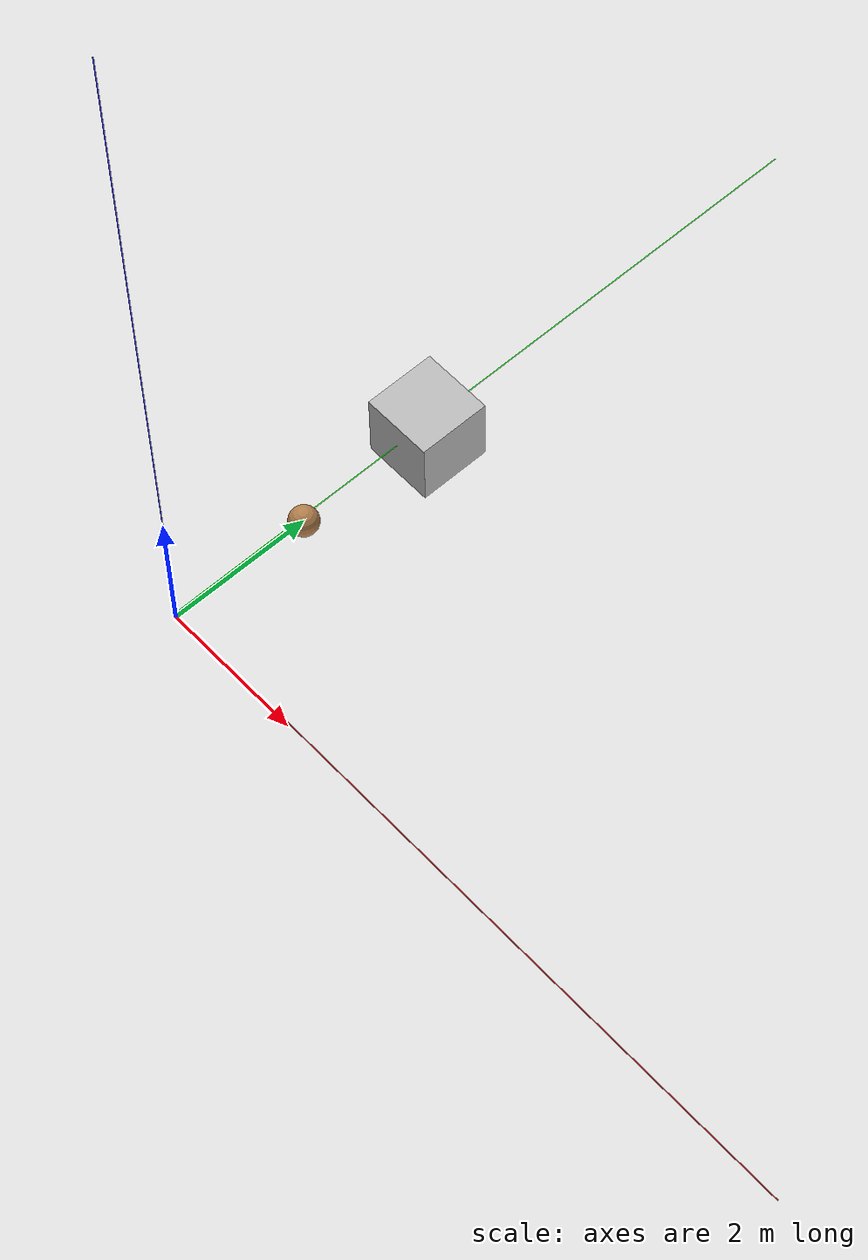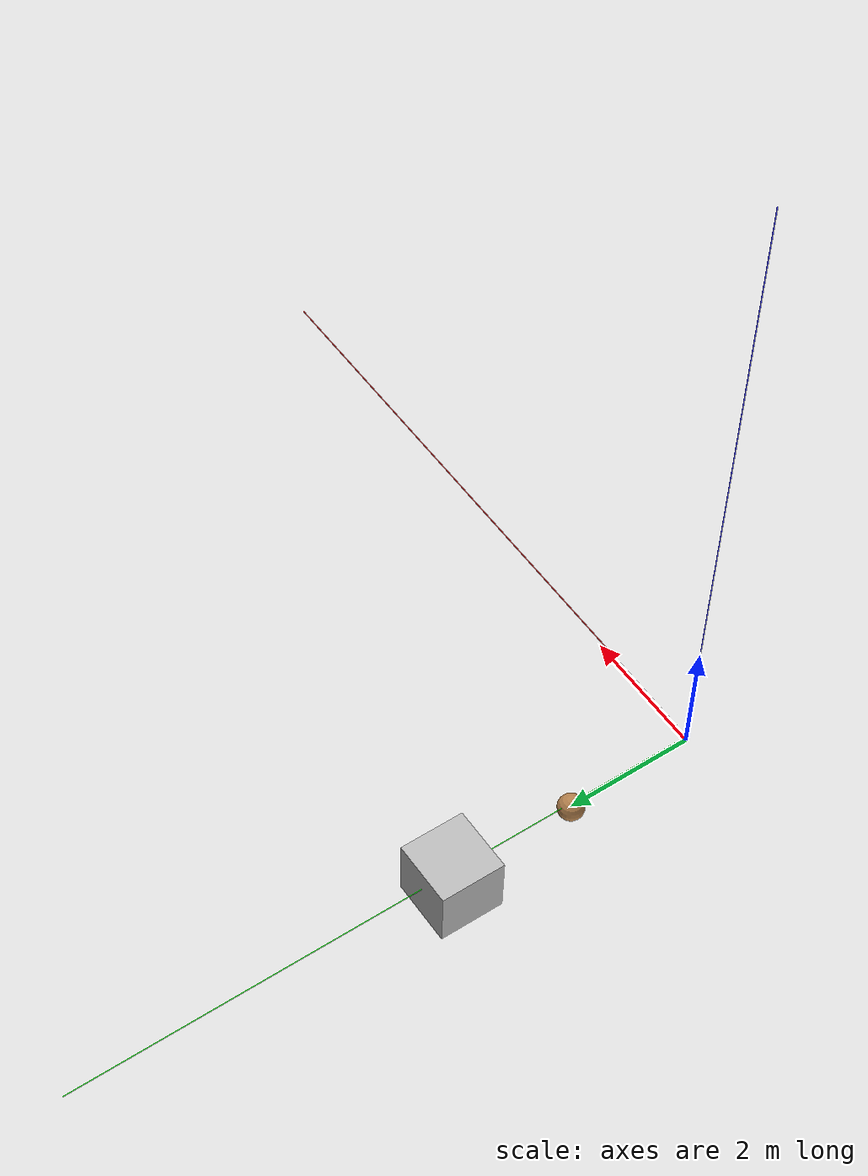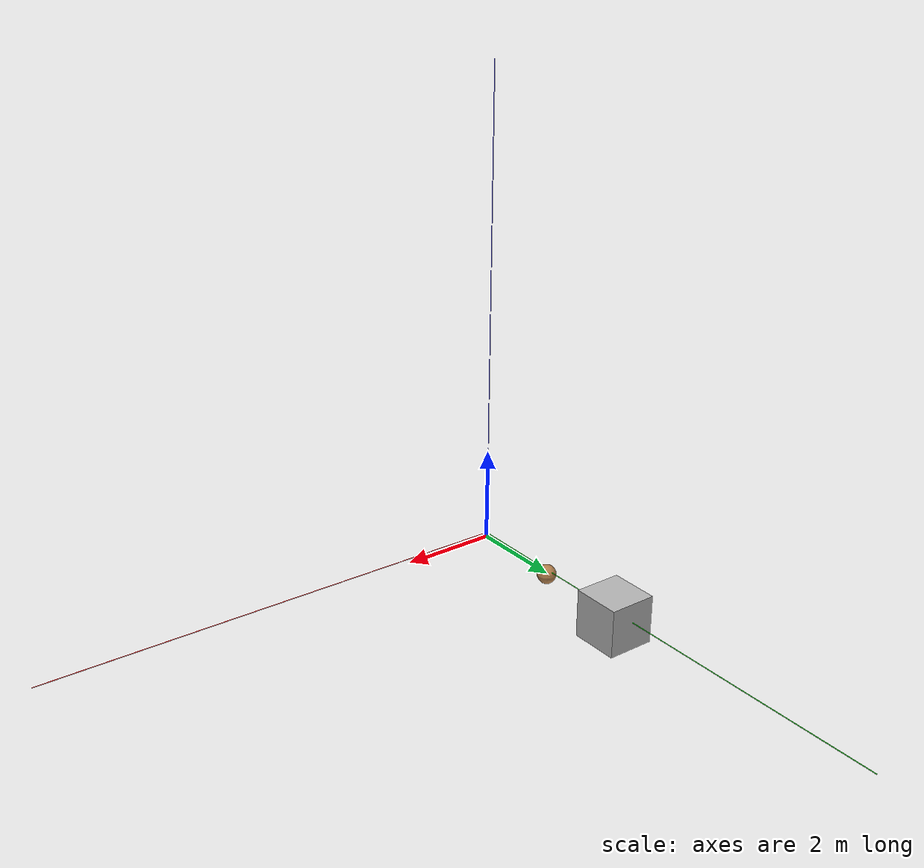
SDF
<sdf version="1.9">
 <world name="iris_runway">
  <physics name="1ms" type="ignore">
   <max_step_size>0.001</max_step_size>
   <real_time_factor>1.0</real_time_factor>
  </physics>
  <plugin filename="gz-sim-physics-system" name="gz::sim::systems::Physics"/>
  <plugin filename="gz-sim-sensors-system" name="gz::sim::systems::Sensors">
   <render_engine>ogre2</render_engine>
  </plugin>
  <plugin filename="gz-sim-user-commands-system" name="gz::sim::systems::UserCommands"/>
  <plugin filename="gz-sim-scene-broadcaster-system" name="gz::sim::systems::SceneBroadcaster"/>
  <plugin filename="gz-sim-imu-system" name="gz::sim::systems::Imu"/>
  <plugin filename="gz-sim-navsat-system" name="gz::sim::systems::NavSat"/>
  <scene><ambient>1.0 1.0 1.0</ambient><background>0.8 0.8 0.8</background></scene>
  <spherical_coordinates>
   <latitude_deg>-35.363262</latitude_deg>
   <longitude_deg>149.165237</longitude_deg>
   <elevation>584</elevation>
   <heading_deg>0</heading_deg>
   <surface_model>EARTH_WGS84</surface_model>
  </spherical_coordinates>
  <light type="directional" name="sun">
   <pose>0 0 10 0 0 0</pose>
   <diffuse>0.8 0.8 0.8 1</diffuse>
   <specular>0.8 0.8 0.8 1</specular>
   <attenuation>
    <range>1000</range>
    <constant>0.9</constant>
    <linear>0.01</linear>
    <quadratic>0.001</quadratic>
   </attenuation>
   <direction>-0.5 0.1 -0.9</direction>
  </light>
  <model name="axes">
   <static>1</static>
   <link name="link">
    <visual name="r">
     <cast_shadows>0</cast_shadows>
     <pose>5 0 0.1 0 0 0</pose>
     <geometry><box><size>10 0.01 0.01</size></box></geometry>
     <material>
      <ambient>1 0 0 0.8</ambient>
      <diffuse>1 0 0 0.8</diffuse>
      <emissive>1 0 0 0.8</emissive>
      <specular>0.5 0.5 0.5 0.8</specular>
     </material>
    </visual>
    <visual name="g">
     <cast_shadows>0</cast_shadows>
     <pose>0 5 0.1 0 0 0</pose>
     <geometry><box><size>0.01 10 0.01</size></box></geometry>
     <material>
      <ambient>0 1 0 0.8</ambient>
      <diffuse>0 1 0 0.8</diffuse>
      <emissive>0 1 0 0.8</emissive>
      <specular>0.5 0.5 0.5 0.8</specular>
     </material>
    </visual>
    <visual name="b">
     <cast_shadows>0</cast_shadows>
     <pose>0 0 5.1 0 0 0</pose>
     <geometry><box><size>0.01 0.01 10</size></box></geometry>
     <material>
      <ambient>0 0 1 0.8</ambient>
      <diffuse>0 0 1 0.8</diffuse>
      <emissive>0 0 1 0.8</emissive>
      <specular>0.5 0.5 0.5 0.8</specular>
     </material>
    </visual>
    <sensor name="navsat_sensor" type="navsat"><always_on>1</always_on><update_rate>1</update_rate></sensor>
   </link>
  </model>
  <include><uri>model://my_building</uri><pose>0 4 0 0 0 0</pose></include>
  <include><uri>model://my_ball</uri><pose>0 2 0 0 0 0</pose></include>
 </world>
</sdf>

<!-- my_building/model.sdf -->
<sdf version="1.9">
  <model name="my_building">
    <static>true</static>
    <link name="link">
      <visual name="visual">
        <geometry>
          <box>
            <size>1 1 1</size>
          </box>
        </geometry>
        <material>
          <pbr>
            <metal>
              <albedo_map>/home/ubi/gz_ws/src/ardupilot_gazebo/models/my_building/materials/textures/love.png</albedo_map>
              <metalness>0.0</metalness>
              <roughness>1.0</roughness>
            </metal>
          </pbr>
        </material>
      </visual>
    </link>
  </model>
</sdf>

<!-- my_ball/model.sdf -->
<sdf version="1.6">
  <model name="my_ball">
    <static>false</static>
    <link name="link">
      <visual name="visual">
        <geometry>
          <sphere>
            <radius>0.2</radius>
          </sphere>
        </geometry>

    <material>
      <script>
        <uri>model://my_ball/materials/scripts</uri>

        <name>Gazebo/WoodFloor</name>
      </script>
    </material>

      </visual>
      <collision name="collision">
        <geometry>
          <sphere>
            <radius>0.2</radius>
          </sphere>
        </geometry>
      </collision>
    </link>
  </model>
</sdf>
